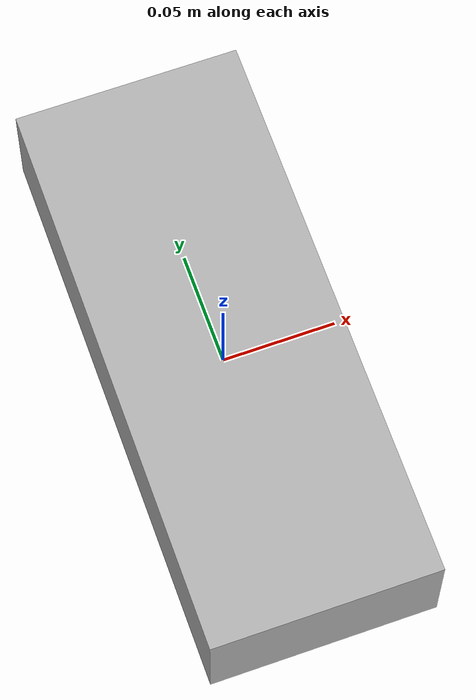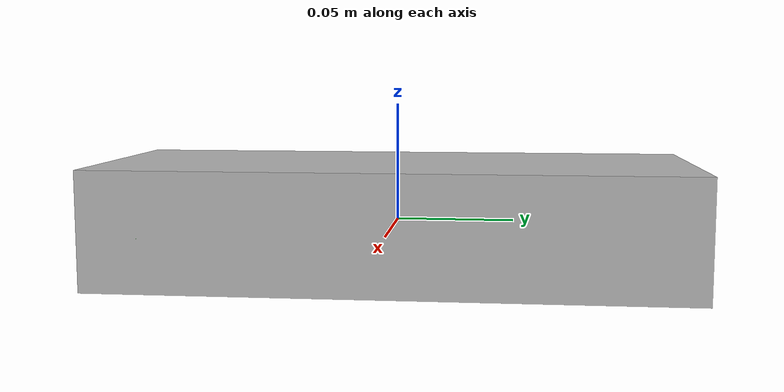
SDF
<?xml version="1.0"?>
<sdf version="1.6">
  <model name="stereo_camera">
    <pose>0 0 0 0 0 0</pose>
    <static>true</static>

    <link name="camera_base">
      <gravity>false</gravity>
      <pose>0 0 0 0 0 0</pose>

      <inertial>
        <mass>0.5</mass>
        <inertia>
          <ixx>0.001</ixx>
          <ixy>0.0</ixy>
          <ixz>0.0</ixz>
          <iyy>0.001</iyy>
          <iyz>0.0</iyz>
          <izz>0.001</izz>
        </inertia>
      </inertial>

      <!-- 移除了碰撞模型 -->

      <!-- 基座视觉模型 -->
      <visual name="base_visual">
        <geometry>
          <box>
            <size>0.1 0.25 0.05</size>
          </box>
        </geometry>
        <material>
          <ambient>0.3 0.3 0.3 1</ambient>
          <diffuse>0.7 0.7 0.7 1</diffuse>
        </material>
      </visual>

      <!-- 左相机视觉模型 -->
      <visual name="left_camera_visual">
        <pose>0.03 0.1 0 0 0 0</pose>
        <geometry>
          <cylinder>
            <radius>0.02</radius>
            <length>0.04</length>
          </cylinder>
        </geometry>
        <material>
          <ambient>1 0 0 1</ambient>
          <diffuse>0.8 0 0 1</diffuse>
        </material>
      </visual>

      <!-- 右相机视觉模型 -->
      <visual name="right_camera_visual">
        <pose>0.03 -0.1 0 0 0 0</pose>
        <geometry>
          <cylinder>
            <radius>0.02</radius>
            <length>0.04</length>
          </cylinder>
        </geometry>
        <material>
          <ambient>0 1 0 1</ambient>
          <diffuse>0 0.8 0 1</diffuse>
        </material>
      </visual>

      <!-- 左相机传感器 -->
      <sensor name="left_camera" type="camera">
        <pose>0.05 0.1 0 0 0 0</pose>
        <camera>
          <horizontal_fov>1.807</horizontal_fov>
          <image>
            <width>1280</width>
            <height>720</height>
            <format>R8G8B8</format>
          </image>
          <clip>
            <near>0.1</near>
            <far>100</far>
          </clip>
        </camera>
        <always_on>true</always_on>
        <update_rate>30</update_rate>
        <visualize>true</visualize>

        <plugin name="left_camera_plugin" filename="libgazebo_ros_camera.so">
          <alwaysOn>true</alwaysOn>
          <updateRate>30.0</updateRate>
          <cameraName>left_camera</cameraName>
          <imageTopicName>image_raw</imageTopicName>
          <cameraInfoTopicName>camera_info</cameraInfoTopicName>
          <frameName>camera_base</frameName>
        </plugin>
      </sensor>

      <!-- 右相机传感器 -->
      <sensor name="right_camera" type="camera">
        <pose>0.05 -0.1 0 0 0 0</pose>
        <camera>
          <horizontal_fov>1.807</horizontal_fov>
          <image>
            <width>1280</width>
            <height>720</height>
            <format>R8G8B8</format>
          </image>
          <clip>
            <near>0.1</near>
            <far>100</far>
          </clip>
        </camera>
        <always_on>true</always_on>
        <update_rate>30</update_rate>
        <visualize>true</visualize>

        <plugin name="right_camera_plugin" filename="libgazebo_ros_camera.so">
          <alwaysOn>true</alwaysOn>
          <updateRate>30.0</updateRate>
          <cameraName>right_camera</cameraName>
          <imageTopicName>image_raw</imageTopicName>
          <cameraInfoTopicName>camera_info</cameraInfoTopicName>
          <frameName>camera_base</frameName>
        </plugin>
      </sensor>
    </link>
  </model>
</sdf>
